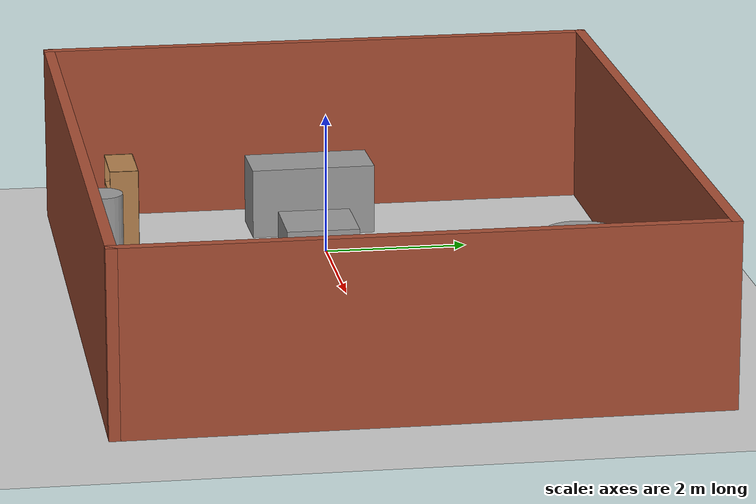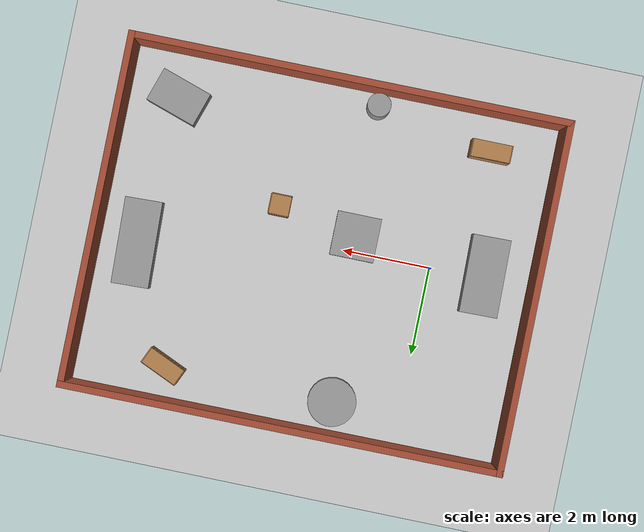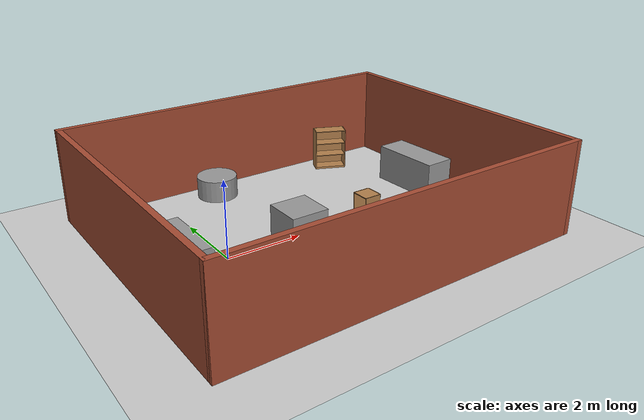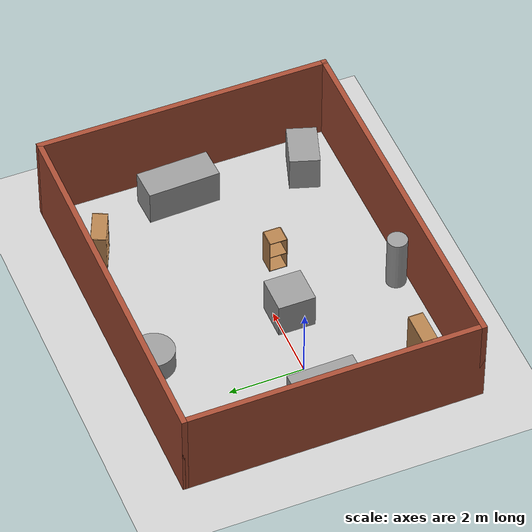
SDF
<sdf version="1.6">
 <world name="default">
  <light name="sun" type="directional">
   <pose>0 0 10 0 -0 0</pose>
   <diffuse>0.8 0.8 0.8 1</diffuse>
   <specular>0.2 0.2 0.2 1</specular>
   <attenuation>
    <range>1000</range>
    <constant>0.9</constant>
    <linear>0.01</linear>
    <quadratic>0.001</quadratic>
   </attenuation>
   <direction>-0.5 0.1 -0.9</direction>
  </light>
  <model name="ground_plane">
   <static>1</static>
   <link name="link">
    <collision name="collision">
     <geometry><plane><normal>0 0 1</normal><size>100 100</size></plane></geometry>
     <surface><friction><ode><mu>100</mu><mu2>50</mu2></ode></friction></surface>
    </collision>
    <visual name="visual">
     <cast_shadows>0</cast_shadows>
     <geometry><plane><normal>0 0 1</normal><size>100 100</size></plane></geometry>
     <material>
      <script><uri>file://media/materials/scripts/gazebo.material</uri><name>Gazebo/Grey</name></script>
     </material>
    </visual>
   </link>
  </model>
  <gravity>0 0 -9.8</gravity>
  <magnetic_field>6e-06 2.3e-05 -4.2e-05</magnetic_field>
  <atmosphere type="adiabatic"/>
  <physics name="default_physics" default="0" type="ode">
   <max_step_size>0.001</max_step_size>
   <real_time_factor>1</real_time_factor>
   <real_time_update_rate>1000</real_time_update_rate>
  </physics>
  <scene><ambient>0.4 0.4 0.4 1</ambient><background>0.7 0.7 0.7 1</background><shadows>1</shadows></scene>
  <audio><device>default</device></audio>
  <spherical_coordinates>
   <surface_model>EARTH_WGS84</surface_model>
   <latitude_deg>0</latitude_deg>
   <longitude_deg>0</longitude_deg>
   <elevation>0</elevation>
   <heading_deg>0</heading_deg>
  </spherical_coordinates>
  <model name="model_room">
   <pose>2.5841 0.210811 0 0 0 -1.56754</pose>
   <link name="Wall_18">
    <collision name="Wall_18_Collision">
     <geometry><box><size>10 0.15 2.5</size></box></geometry>
     <pose>0 0 1.25 0 -0 0</pose>
    </collision>
    <visual name="Wall_18_Visual">
     <pose>0 0 1.25 0 -0 0</pose>
     <geometry><box><size>10 0.15 2.5</size></box></geometry>
     <material>
      <script><uri>file://media/materials/scripts/gazebo.material</uri><name>Gazebo/Bricks</name></script>
      <ambient>1 1 1 1</ambient>
     </material>
     <meta><layer>0</layer></meta>
    </visual>
    <pose>-3.925 -0 0 0 -0 -1.5708</pose>
   </link>
   <link name="Wall_19">
    <collision name="Wall_19_Collision">
     <geometry><box><size>8 0.15 2.5</size></box></geometry>
     <pose>0 0 1.25 0 -0 0</pose>
    </collision>
    <visual name="Wall_19_Visual">
     <pose>0 0 1.25 0 -0 0</pose>
     <geometry><box><size>8 0.15 2.5</size></box></geometry>
     <material>
      <script><uri>file://media/materials/scripts/gazebo.material</uri><name>Gazebo/Bricks</name></script>
      <ambient>1 1 1 1</ambient>
     </material>
     <meta><layer>0</layer></meta>
    </visual>
    <pose>0 -4.925 0 0 -0 0</pose>
   </link>
   <link name="Wall_20">
    <collision name="Wall_20_Collision">
     <geometry><box><size>10 0.15 2.5</size></box></geometry>
     <pose>0 0 1.25 0 -0 0</pose>
    </collision>
    <visual name="Wall_20_Visual">
     <pose>0 0 1.25 0 -0 0</pose>
     <geometry><box><size>10 0.15 2.5</size></box></geometry>
     <material>
      <script><uri>file://media/materials/scripts/gazebo.material</uri><name>Gazebo/Bricks</name></script>
      <ambient>1 1 1 1</ambient>
     </material>
     <meta><layer>0</layer></meta>
    </visual>
    <pose>3.925 -0 0 0 -0 1.5708</pose>
   </link>
   <link name="Wall_21">
    <collision name="Wall_21_Collision">
     <geometry><box><size>8 0.15 2.5</size></box></geometry>
     <pose>0 0 1.25 0 -0 0</pose>
    </collision>
    <visual name="Wall_21_Visual">
     <pose>0 0 1.25 0 -0 0</pose>
     <geometry><box><size>8 0.15 2.5</size></box></geometry>
     <material>
      <script><uri>file://media/materials/scripts/gazebo.material</uri><name>Gazebo/Bricks</name></script>
      <ambient>1 1 1 1</ambient>
     </material>
     <meta><layer>0</layer></meta>
    </visual>
    <pose>0 4.925 0 0 -0 3.14159</pose>
   </link>
   <static>1</static>
  </model>
  <model name="bookshelf">
   <static>1</static>
   <link name="link">
    <inertial><mass>1</mass></inertial>
    <collision name="back">
     <pose>0 0.005 0.6 0 -0 0</pose>
     <geometry><box><size>0.9 0.01 1.2</size></box></geometry>
    </collision>
    <visual name="visual1">
     <pose>0 0.005 0.6 0 -0 0</pose>
     <geometry><box><size>0.9 0.01 1.2</size></box></geometry>
     <material>
      <script><uri>file://media/materials/scripts/gazebo.material</uri><name>Gazebo/Wood</name></script>
     </material>
    </visual>
    <collision name="left_side">
     <pose>0.45 -0.195 0.6 0 -0 0</pose>
     <geometry><box><size>0.02 0.4 1.2</size></box></geometry>
    </collision>
    <visual name="visual2">
     <pose>0.45 -0.195 0.6 0 -0 0</pose>
     <geometry><box><size>0.02 0.4 1.2</size></box></geometry>
     <material>
      <script><uri>file://media/materials/scripts/gazebo.material</uri><name>Gazebo/Wood</name></script>
     </material>
    </visual>
    <collision name="right_side">
     <pose>-0.45 -0.195 0.6 0 -0 0</pose>
     <geometry><box><size>0.02 0.4 1.2</size></box></geometry>
    </collision>
    <visual name="visual3">
     <pose>-0.45 -0.195 0.6 0 -0 0</pose>
     <geometry><box><size>0.02 0.4 1.2</size></box></geometry>
     <material>
      <script><uri>file://media/materials/scripts/gazebo.material</uri><name>Gazebo/Wood</name></script>
     </material>
    </visual>
    <collision name="bottom">
     <pose>0 -0.195 0.03 0 -0 0</pose>
     <geometry><box><size>0.88 0.4 0.06</size></box></geometry>
    </collision>
    <visual name="visual4">
     <pose>0 -0.195 0.03 0 -0 0</pose>
     <geometry><box><size>0.88 0.4 0.06</size></box></geometry>
     <material>
      <script><uri>file://media/materials/scripts/gazebo.material</uri><name>Gazebo/Wood</name></script>
     </material>
    </visual>
    <collision name="top">
     <pose>0 -0.195 1.19 0 -0 0</pose>
     <geometry><box><size>0.88 0.4 0.02</size></box></geometry>
    </collision>
    <visual name="visual5">
     <pose>0 -0.195 1.19 0 -0 0</pose>
     <geometry><box><size>0.88 0.4 0.02</size></box></geometry>
     <material>
      <script><uri>file://media/materials/scripts/gazebo.material</uri><name>Gazebo/Wood</name></script>
     </material>
    </visual>
    <collision name="low_shelf">
     <pose>0 -0.195 0.43 0 -0 0</pose>
     <geometry><box><size>0.88 0.4 0.02</size></box></geometry>
    </collision>
    <visual name="visual6">
     <pose>0 -0.195 0.43 0 -0 0</pose>
     <geometry><box><size>0.88 0.4 0.02</size></box></geometry>
     <material>
      <script><uri>file://media/materials/scripts/gazebo.material</uri><name>Gazebo/Wood</name></script>
     </material>
    </visual>
    <collision name="high_shelf">
     <pose>0 -0.195 0.8 0 -0 0</pose>
     <geometry><box><size>0.88 0.4 0.02</size></box></geometry>
    </collision>
    <visual name="visual7">
     <pose>0 -0.195 0.8 0 -0 0</pose>
     <geometry><box><size>0.88 0.4 0.02</size></box></geometry>
     <material>
      <script><uri>file://media/materials/scripts/gazebo.material</uri><name>Gazebo/Wood</name></script>
     </material>
    </visual>
   </link>
   <pose>5.49919 3.54125 0 0 0 -0.416053</pose>
  </model>
  <model name="cabinet">
   <static>1</static>
   <link name="cabinet_bottom_plate">
    <inertial>
     <pose>0 0 -1 0 -0 0</pose>
     <inertia><ixx>2.05</ixx><ixy>0</ixy><ixz>0</ixz><iyy>2.05</iyy><iyz>0</iyz><izz>2.05</izz></inertia>
     <mass>25</mass>
    </inertial>
    <collision name="cabinet_bottom_plate_geom">
     <pose>0 0 0.01 0 -0 0</pose>
     <geometry><box><size>0.45 0.45 0.02</size></box></geometry>
    </collision>
    <visual name="cabinet_bottom_plate_geom_visual">
     <pose>0 0 0.01 0 -0 0</pose>
     <geometry><box><size>0.45 0.45 0.02</size></box></geometry>
     <material>
      <script><uri>file://media/materials/scripts/gazebo.material</uri><name>Gazebo/Wood</name></script>
     </material>
    </visual>
    <collision name="cabinet_bottom_plate_geom_cabinet_back_plate">
     <pose>0.235 0 0.51 0 -0 0</pose>
     <geometry><box><size>0.02 0.45 1.02</size></box></geometry>
    </collision>
    <visual name="cabinet_bottom_plate_geom_cabinet_back_plate_visual">
     <pose>0.235 0 0.51 0 -0 0</pose>
     <geometry><box><size>0.02 0.45 1.02</size></box></geometry>
     <material>
      <script><uri>file://media/materials/scripts/gazebo.material</uri><name>Gazebo/Wood</name></script>
     </material>
    </visual>
    <collision name="cabinet_bottom_plate_geom_cabinet_left_plate">
     <pose>0 0.235 0.51 0 -0 0</pose>
     <geometry><box><size>0.45 0.02 1.02</size></box></geometry>
    </collision>
    <visual name="cabinet_bottom_plate_geom_cabinet_left_plate_visual">
     <pose>0 0.235 0.51 0 -0 0</pose>
     <geometry><box><size>0.45 0.02 1.02</size></box></geometry>
     <material>
      <script><uri>file://media/materials/scripts/gazebo.material</uri><name>Gazebo/Wood</name></script>
     </material>
    </visual>
    <collision name="cabinet_bottom_plate_geom_cabinet_middle_plate">
     <pose>0 0 0.51 0 -0 0</pose>
     <geometry><box><size>0.45 0.45 0.02</size></box></geometry>
    </collision>
    <visual name="cabinet_bottom_plate_geom_cabinet_middle_plate_visual">
     <pose>0 0 0.51 0 -0 0</pose>
     <geometry><box><size>0.45 0.45 0.02</size></box></geometry>
     <material>
      <script><uri>file://media/materials/scripts/gazebo.material</uri><name>Gazebo/Wood</name></script>
     </material>
    </visual>
    <collision name="cabinet_bottom_plate_geom_cabinet_right_plate">
     <pose>0 -0.235 0.51 0 -0 0</pose>
     <geometry><box><size>0.45 0.02 1.02</size></box></geometry>
    </collision>
    <visual name="cabinet_bottom_plate_geom_cabinet_right_plate_visual">
     <pose>0 -0.235 0.51 0 -0 0</pose>
     <geometry><box><size>0.45 0.02 1.02</size></box></geometry>
     <material>
      <script><uri>file://media/materials/scripts/gazebo.material</uri><name>Gazebo/Wood</name></script>
     </material>
    </visual>
    <collision name="cabinet_bottom_plate_geom_cabinet_top_plate">
     <pose>0 0 1.01 0 -0 0</pose>
     <geometry><box><size>0.45 0.45 0.02</size></box></geometry>
    </collision>
    <visual name="cabinet_bottom_plate_geom_cabinet_top_plate_visual">
     <pose>0 0 1.01 0 -0 0</pose>
     <geometry><box><size>0.45 0.45 0.02</size></box></geometry>
     <material>
      <script><uri>file://media/materials/scripts/gazebo.material</uri><name>Gazebo/Wood</name></script>
     </material>
    </visual>
   </link>
   <pose>3.58632 -0.704648 0 0 -0 0</pose>
  </model>
  <model name="unit_box">
   <pose>1.78655 -0.350632 0.5 0 -0 0</pose>
   <link name="link">
    <inertial>
     <mass>1</mass>
     <inertia>
      <ixx>0.166667</ixx>
      <ixy>0</ixy>
      <ixz>0</ixz>
      <iyy>0.166667</iyy>
      <iyz>0</iyz>
      <izz>0.166667</izz>
     </inertia>
    </inertial>
    <collision name="collision"><geometry><box><size>1 1 1</size></box></geometry></collision>
    <visual name="visual">
     <geometry><box><size>1 1 1</size></box></geometry>
     <material>
      <script><name>Gazebo/Grey</name><uri>file://media/materials/scripts/gazebo.material</uri></script>
     </material>
    </visual>
   </link>
  </model>
  <model name="unit_cylinder">
   <pose>1.86965 -3.32162 0.7682 0 0 -0.001002</pose>
   <link name="link">
    <inertial>
     <mass>1</mass>
     <inertia><ixx>0.145833</ixx><ixy>0</ixy><ixz>0</ixz><iyy>0.145833</iyy><iyz>0</iyz><izz>0.125</izz></inertia>
    </inertial>
    <collision name="collision">
     <geometry><cylinder><radius>0.26794</radius><length>1.5364</length></cylinder></geometry>
    </collision>
    <visual name="visual">
     <geometry><cylinder><radius>0.26794</radius><length>1.5364</length></cylinder></geometry>
     <material>
      <script><name>Gazebo/Grey</name><uri>file://media/materials/scripts/gazebo.material</uri></script>
     </material>
    </visual>
   </link>
  </model>
  <model name="unit_box_0">
   <pose>-1.23636 -0.077448 0.499996 -9e-06 -0 -1.55207</pose>
   <link name="link">
    <inertial>
     <mass>1</mass>
     <inertia>
      <ixx>0.166667</ixx>
      <ixy>0</ixy>
      <ixz>0</ixz>
      <iyy>0.166667</iyy>
      <iyz>0</iyz>
      <izz>0.166667</izz>
     </inertia>
    </inertial>
    <collision name="collision"><geometry><box><size>1.77029 0.861033 1</size></box></geometry></collision>
    <visual name="visual">
     <geometry><box><size>1.77029 0.861033 1</size></box></geometry>
     <material>
      <script><name>Gazebo/Grey</name><uri>file://media/materials/scripts/gazebo.material</uri></script>
     </material>
    </visual>
   </link>
  </model>
  <model name="unit_box_1">
   <pose>6.56341 0.769668 0.499996 9e-06 -0 -1.53459</pose>
   <link name="link">
    <inertial>
     <mass>1</mass>
     <inertia>
      <ixx>0.166667</ixx>
      <ixy>0</ixy>
      <ixz>0</ixz>
      <iyy>0.166667</iyy>
      <iyz>0</iyz>
      <izz>0.166667</izz>
     </inertia>
    </inertial>
    <collision name="collision"><geometry><box><size>1.95826 0.846467 1</size></box></geometry></collision>
    <visual name="visual">
     <geometry><box><size>1.95826 0.846467 1</size></box></geometry>
     <material>
      <script><name>Gazebo/Grey</name><uri>file://media/materials/scripts/gazebo.material</uri></script>
     </material>
    </visual>
   </link>
  </model>
  <model name="unit_cylinder_0">
   <pose>1.54993 3.40454 0.297269 0 -0 0</pose>
   <link name="link">
    <inertial>
     <mass>1</mass>
     <inertia><ixx>0.145833</ixx><ixy>0</ixy><ixz>0</ixz><iyy>0.145833</iyy><iyz>0</iyz><izz>0.125</izz></inertia>
    </inertial>
    <collision name="collision">
     <geometry><cylinder><radius>0.551677</radius><length>0.594538</length></cylinder></geometry>
    </collision>
    <visual name="visual">
     <geometry><cylinder><radius>0.551677</radius><length>0.594538</length></cylinder></geometry>
     <material>
      <script><name>Gazebo/Grey</name><uri>file://media/materials/scripts/gazebo.material</uri></script>
     </material>
    </visual>
   </link>
  </model>
  <model name="unit_box_2">
   <pose>6.308 -2.6141 0.5 -4e-06 -2e-06 -0.31723</pose>
   <link name="link">
    <inertial>
     <mass>1</mass>
     <inertia>
      <ixx>0.166667</ixx>
      <ixy>0</ixy>
      <ixz>0</ixz>
      <iyy>0.166667</iyy>
      <iyz>0</iyz>
      <izz>0.166667</izz>
     </inertia>
    </inertial>
    <collision name="collision"><geometry><box><size>1.19554 0.801158 1</size></box></geometry></collision>
    <visual name="visual">
     <geometry><box><size>1.19554 0.801158 1</size></box></geometry>
     <material>
      <script><name>Gazebo/Grey</name><uri>file://media/materials/scripts/gazebo.material</uri></script>
     </material>
    </visual>
   </link>
  </model>
  <model name="bookshelf_clone">
   <static>1</static>
   <link name="link">
    <inertial><mass>1</mass></inertial>
    <collision name="back">
     <pose>0 0.005 0.6 0 -0 0</pose>
     <geometry><box><size>0.9 0.01 1.2</size></box></geometry>
    </collision>
    <visual name="visual1">
     <pose>0 0.005 0.6 0 -0 0</pose>
     <geometry><box><size>0.9 0.01 1.2</size></box></geometry>
     <material>
      <script><uri>file://media/materials/scripts/gazebo.material</uri><name>Gazebo/Wood</name></script>
     </material>
    </visual>
    <collision name="left_side">
     <pose>0.45 -0.195 0.6 0 -0 0</pose>
     <geometry><box><size>0.02 0.4 1.2</size></box></geometry>
    </collision>
    <visual name="visual2">
     <pose>0.45 -0.195 0.6 0 -0 0</pose>
     <geometry><box><size>0.02 0.4 1.2</size></box></geometry>
     <material>
      <script><uri>file://media/materials/scripts/gazebo.material</uri><name>Gazebo/Wood</name></script>
     </material>
    </visual>
    <collision name="right_side">
     <pose>-0.45 -0.195 0.6 0 -0 0</pose>
     <geometry><box><size>0.02 0.4 1.2</size></box></geometry>
    </collision>
    <visual name="visual3">
     <pose>-0.45 -0.195 0.6 0 -0 0</pose>
     <geometry><box><size>0.02 0.4 1.2</size></box></geometry>
     <material>
      <script><uri>file://media/materials/scripts/gazebo.material</uri><name>Gazebo/Wood</name></script>
     </material>
    </visual>
    <collision name="bottom">
     <pose>0 -0.195 0.03 0 -0 0</pose>
     <geometry><box><size>0.88 0.4 0.06</size></box></geometry>
    </collision>
    <visual name="visual4">
     <pose>0 -0.195 0.03 0 -0 0</pose>
     <geometry><box><size>0.88 0.4 0.06</size></box></geometry>
     <material>
      <script><uri>file://media/materials/scripts/gazebo.material</uri><name>Gazebo/Wood</name></script>
     </material>
    </visual>
    <collision name="top">
     <pose>0 -0.195 1.19 0 -0 0</pose>
     <geometry><box><size>0.88 0.4 0.02</size></box></geometry>
    </collision>
    <visual name="visual5">
     <pose>0 -0.195 1.19 0 -0 0</pose>
     <geometry><box><size>0.88 0.4 0.02</size></box></geometry>
     <material>
      <script><uri>file://media/materials/scripts/gazebo.material</uri><name>Gazebo/Wood</name></script>
     </material>
    </visual>
    <collision name="low_shelf">
     <pose>0 -0.195 0.43 0 -0 0</pose>
     <geometry><box><size>0.88 0.4 0.02</size></box></geometry>
    </collision>
    <visual name="visual6">
     <pose>0 -0.195 0.43 0 -0 0</pose>
     <geometry><box><size>0.88 0.4 0.02</size></box></geometry>
     <material>
      <script><uri>file://media/materials/scripts/gazebo.material</uri><name>Gazebo/Wood</name></script>
     </material>
    </visual>
    <collision name="high_shelf">
     <pose>0 -0.195 0.8 0 -0 0</pose>
     <geometry><box><size>0.88 0.4 0.02</size></box></geometry>
    </collision>
    <visual name="visual7">
     <pose>0 -0.195 0.8 0 -0 0</pose>
     <geometry><box><size>0.88 0.4 0.02</size></box></geometry>
     <material>
      <script><uri>file://media/materials/scripts/gazebo.material</uri><name>Gazebo/Wood</name></script>
     </material>
    </visual>
   </link>
   <pose>-0.796363 -2.64853 0 0 -0 0</pose>
  </model>
 </world>
</sdf>
